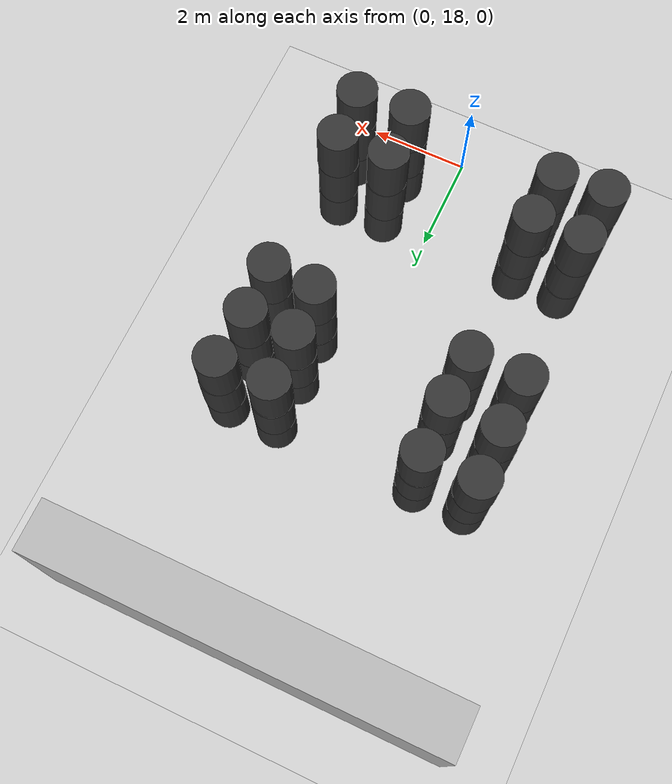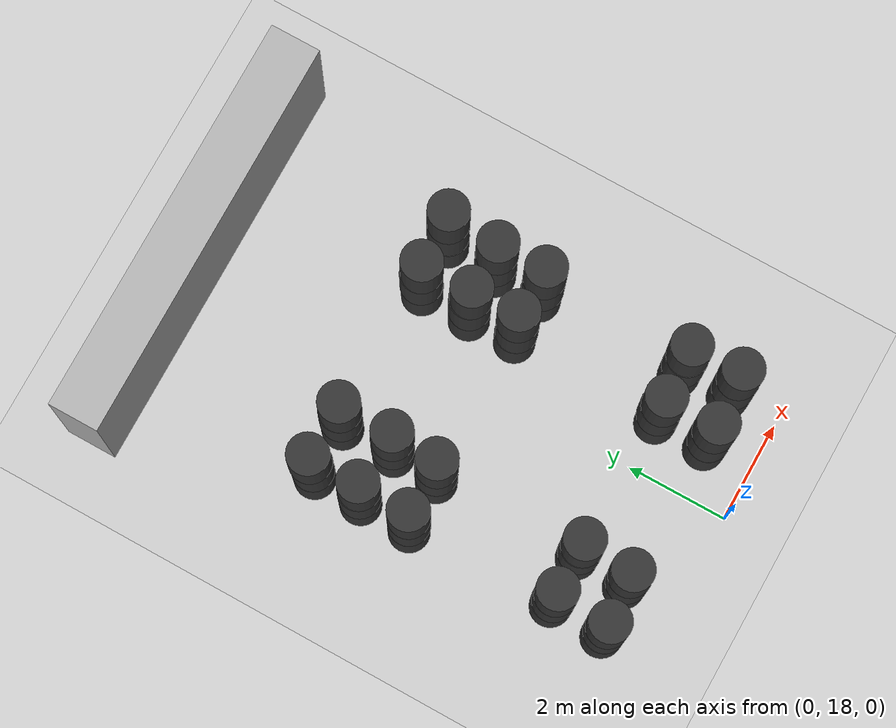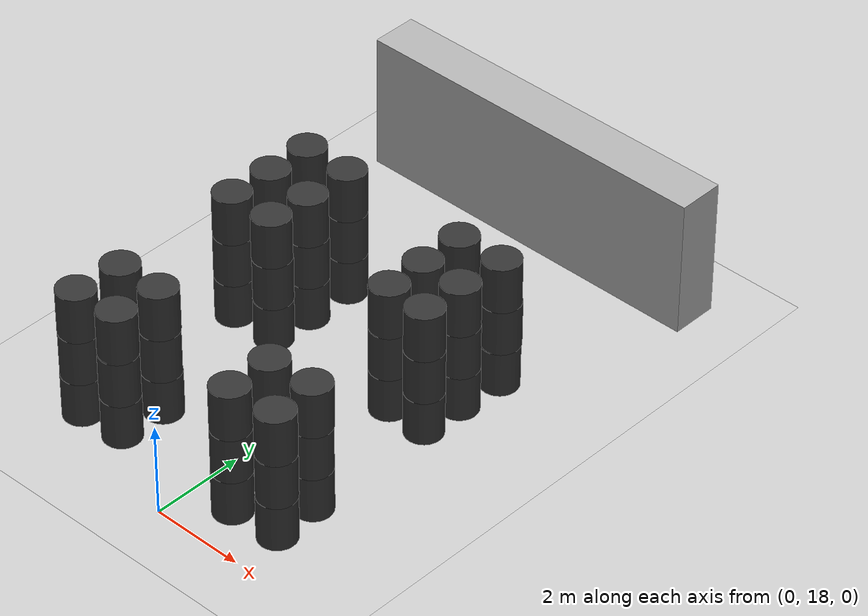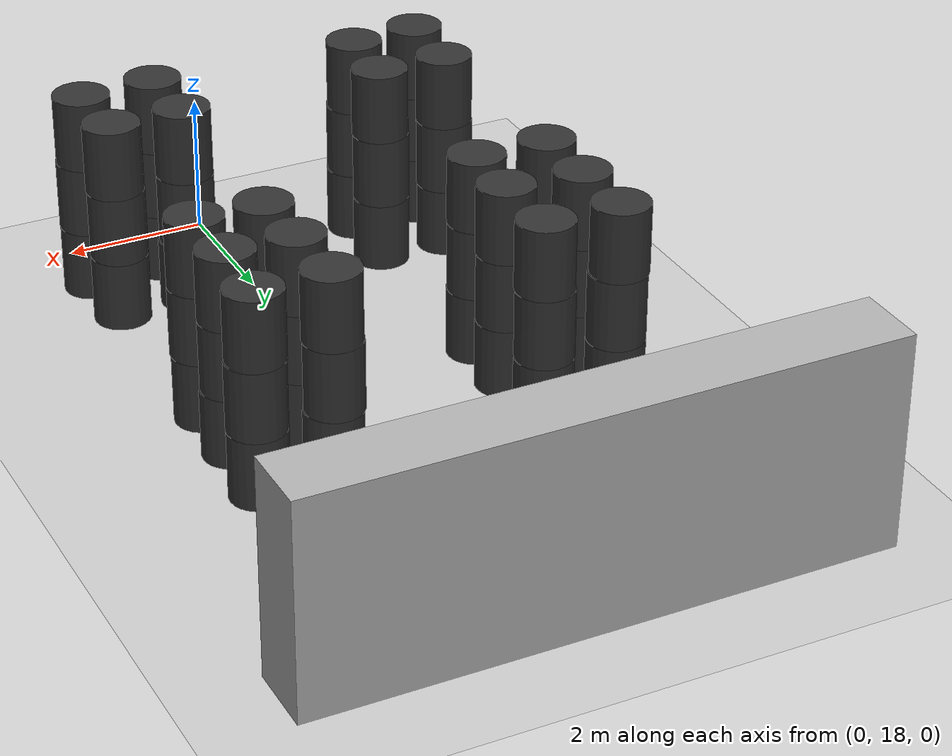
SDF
<sdf version="1.6">
 <world name="default">
  <include><uri>model://ground_plane</uri></include>
  <model name="wall_3">
   <pose frame="sim_world">-0.5 29.0 1.5 0 0 0</pose>
   <static>True</static>
   <link name="wall_3_link">
    <inertial>
     <mass>100</mass>
     <inertia>
      <ixx>0.166667</ixx>
      <ixy>0</ixy>
      <ixz>0</ixz>
      <iyy>0.166667</iyy>
      <iyz>0</iyz>
      <izz>0.166667</izz>
     </inertia>
    </inertial>
    <collision name="wall_3_collision">
     <geometry><box><size>8.0 1.0 3.0</size></box></geometry>
     <max_contacts>100</max_contacts>
    </collision>
    <visual name="wall_3_visual">
     <geometry><box><size>8.0 1.0 3.0</size></box></geometry>
     <material><ambient>0.7 0.7 0.7 1</ambient><diffuse>0.7 0.7 0.7 1</diffuse></material>
    </visual>
   </link>
  </model>
  <model name="cylinder_30">
   <pose frame="sim_world">-3.03980811727 18.9614411124 0.5 0 -0 0</pose>
   <static>True</static>
   <link name="cylinder_30_link">
    <inertial>
     <mass>100</mass>
     <inertia><ixx>0.145833</ixx><ixy>0</ixy><ixz>0</ixz><iyy>0.145833</iyy><iyz>0</iyz><izz>0.125</izz></inertia>
    </inertial>
    <collision name="cylinder_30_collision">
     <geometry><cylinder><length>1.0</length><radius>0.4</radius></cylinder></geometry>
     <max_contacts>100</max_contacts>
    </collision>
    <visual name="cylinder_30_visual">
     <geometry><cylinder><length>1.0</length><radius>0.4</radius></cylinder></geometry>
     <material><ambient>0.2 0.2 0.2 1</ambient><diffuse>0.2 0.2 0.2 1</diffuse></material>
    </visual>
   </link>
  </model>
  <model name="cylinder_31">
   <pose frame="sim_world">-3.03408151154 18.9624144078 1.5 0 -0 0</pose>
   <static>True</static>
   <link name="cylinder_31_link">
    <inertial>
     <mass>100</mass>
     <inertia><ixx>0.145833</ixx><ixy>0</ixy><ixz>0</ixz><iyy>0.145833</iyy><iyz>0</iyz><izz>0.125</izz></inertia>
    </inertial>
    <collision name="cylinder_31_collision">
     <geometry><cylinder><length>1.0</length><radius>0.4</radius></cylinder></geometry>
     <max_contacts>100</max_contacts>
    </collision>
    <visual name="cylinder_31_visual">
     <geometry><cylinder><length>1.0</length><radius>0.4</radius></cylinder></geometry>
     <material><ambient>0.2 0.2 0.2 1</ambient><diffuse>0.2 0.2 0.2 1</diffuse></material>
    </visual>
   </link>
  </model>
  <model name="cylinder_32">
   <pose frame="sim_world">-3.04690763 18.9666969515 2.5 0 -0 0</pose>
   <static>True</static>
   <link name="cylinder_32_link">
    <inertial>
     <mass>100</mass>
     <inertia><ixx>0.145833</ixx><ixy>0</ixy><ixz>0</ixz><iyy>0.145833</iyy><iyz>0</iyz><izz>0.125</izz></inertia>
    </inertial>
    <collision name="cylinder_32_collision">
     <geometry><cylinder><length>1.0</length><radius>0.4</radius></cylinder></geometry>
     <max_contacts>100</max_contacts>
    </collision>
    <visual name="cylinder_32_visual">
     <geometry><cylinder><length>1.0</length><radius>0.4</radius></cylinder></geometry>
     <material><ambient>0.2 0.2 0.2 1</ambient><diffuse>0.2 0.2 0.2 1</diffuse></material>
    </visual>
   </link>
  </model>
  <model name="cylinder_33">
   <pose frame="sim_world">-2.99564388703 20.0531173185 0.5 0 -0 0</pose>
   <static>True</static>
   <link name="cylinder_33_link">
    <inertial>
     <mass>100</mass>
     <inertia><ixx>0.145833</ixx><ixy>0</ixy><ixz>0</ixz><iyy>0.145833</iyy><iyz>0</iyz><izz>0.125</izz></inertia>
    </inertial>
    <collision name="cylinder_33_collision">
     <geometry><cylinder><length>1.0</length><radius>0.4</radius></cylinder></geometry>
     <max_contacts>100</max_contacts>
    </collision>
    <visual name="cylinder_33_visual">
     <geometry><cylinder><length>1.0</length><radius>0.4</radius></cylinder></geometry>
     <material><ambient>0.2 0.2 0.2 1</ambient><diffuse>0.2 0.2 0.2 1</diffuse></material>
    </visual>
   </link>
  </model>
  <model name="cylinder_34">
   <pose frame="sim_world">-2.99322209723 20.0410647307 1.5 0 -0 0</pose>
   <static>True</static>
   <link name="cylinder_34_link">
    <inertial>
     <mass>100</mass>
     <inertia><ixx>0.145833</ixx><ixy>0</ixy><ixz>0</ixz><iyy>0.145833</iyy><iyz>0</iyz><izz>0.125</izz></inertia>
    </inertial>
    <collision name="cylinder_34_collision">
     <geometry><cylinder><length>1.0</length><radius>0.4</radius></cylinder></geometry>
     <max_contacts>100</max_contacts>
    </collision>
    <visual name="cylinder_34_visual">
     <geometry><cylinder><length>1.0</length><radius>0.4</radius></cylinder></geometry>
     <material><ambient>0.2 0.2 0.2 1</ambient><diffuse>0.2 0.2 0.2 1</diffuse></material>
    </visual>
   </link>
  </model>
  <model name="cylinder_35">
   <pose frame="sim_world">-2.99016088027 20.0374575243 2.5 0 -0 0</pose>
   <static>True</static>
   <link name="cylinder_35_link">
    <inertial>
     <mass>100</mass>
     <inertia><ixx>0.145833</ixx><ixy>0</ixy><ixz>0</ixz><iyy>0.145833</iyy><iyz>0</iyz><izz>0.125</izz></inertia>
    </inertial>
    <collision name="cylinder_35_collision">
     <geometry><cylinder><length>1.0</length><radius>0.4</radius></cylinder></geometry>
     <max_contacts>100</max_contacts>
    </collision>
    <visual name="cylinder_35_visual">
     <geometry><cylinder><length>1.0</length><radius>0.4</radius></cylinder></geometry>
     <material><ambient>0.2 0.2 0.2 1</ambient><diffuse>0.2 0.2 0.2 1</diffuse></material>
    </visual>
   </link>
  </model>
  <model name="cylinder_36">
   <pose frame="sim_world">-3.05348859282 23.0096410358 0.5 0 -0 0</pose>
   <static>True</static>
   <link name="cylinder_36_link">
    <inertial>
     <mass>100</mass>
     <inertia><ixx>0.145833</ixx><ixy>0</ixy><ixz>0</ixz><iyy>0.145833</iyy><iyz>0</iyz><izz>0.125</izz></inertia>
    </inertial>
    <collision name="cylinder_36_collision">
     <geometry><cylinder><length>1.0</length><radius>0.4</radius></cylinder></geometry>
     <max_contacts>100</max_contacts>
    </collision>
    <visual name="cylinder_36_visual">
     <geometry><cylinder><length>1.0</length><radius>0.4</radius></cylinder></geometry>
     <material><ambient>0.2 0.2 0.2 1</ambient><diffuse>0.2 0.2 0.2 1</diffuse></material>
    </visual>
   </link>
  </model>
  <model name="cylinder_37">
   <pose frame="sim_world">-3.05013833795 23.0075990019 1.5 0 -0 0</pose>
   <static>True</static>
   <link name="cylinder_37_link">
    <inertial>
     <mass>100</mass>
     <inertia><ixx>0.145833</ixx><ixy>0</ixy><ixz>0</ixz><iyy>0.145833</iyy><iyz>0</iyz><izz>0.125</izz></inertia>
    </inertial>
    <collision name="cylinder_37_collision">
     <geometry><cylinder><length>1.0</length><radius>0.4</radius></cylinder></geometry>
     <max_contacts>100</max_contacts>
    </collision>
    <visual name="cylinder_37_visual">
     <geometry><cylinder><length>1.0</length><radius>0.4</radius></cylinder></geometry>
     <material><ambient>0.2 0.2 0.2 1</ambient><diffuse>0.2 0.2 0.2 1</diffuse></material>
    </visual>
   </link>
  </model>
  <model name="cylinder_38">
   <pose frame="sim_world">-3.04901959713 23.0092645543 2.5 0 -0 0</pose>
   <static>True</static>
   <link name="cylinder_38_link">
    <inertial>
     <mass>100</mass>
     <inertia><ixx>0.145833</ixx><ixy>0</ixy><ixz>0</ixz><iyy>0.145833</iyy><iyz>0</iyz><izz>0.125</izz></inertia>
    </inertial>
    <collision name="cylinder_38_collision">
     <geometry><cylinder><length>1.0</length><radius>0.4</radius></cylinder></geometry>
     <max_contacts>100</max_contacts>
    </collision>
    <visual name="cylinder_38_visual">
     <geometry><cylinder><length>1.0</length><radius>0.4</radius></cylinder></geometry>
     <material><ambient>0.2 0.2 0.2 1</ambient><diffuse>0.2 0.2 0.2 1</diffuse></material>
    </visual>
   </link>
  </model>
  <model name="cylinder_39">
   <pose frame="sim_world">-3.04549401953 24.0413131945 0.5 0 -0 0</pose>
   <static>True</static>
   <link name="cylinder_39_link">
    <inertial>
     <mass>100</mass>
     <inertia><ixx>0.145833</ixx><ixy>0</ixy><ixz>0</ixz><iyy>0.145833</iyy><iyz>0</iyz><izz>0.125</izz></inertia>
    </inertial>
    <collision name="cylinder_39_collision">
     <geometry><cylinder><length>1.0</length><radius>0.4</radius></cylinder></geometry>
     <max_contacts>100</max_contacts>
    </collision>
    <visual name="cylinder_39_visual">
     <geometry><cylinder><length>1.0</length><radius>0.4</radius></cylinder></geometry>
     <material><ambient>0.2 0.2 0.2 1</ambient><diffuse>0.2 0.2 0.2 1</diffuse></material>
    </visual>
   </link>
  </model>
  <model name="cylinder_40">
   <pose frame="sim_world">-3.04982680882 24.0381716794 1.5 0 -0 0</pose>
   <static>True</static>
   <link name="cylinder_40_link">
    <inertial>
     <mass>100</mass>
     <inertia><ixx>0.145833</ixx><ixy>0</ixy><ixz>0</ixz><iyy>0.145833</iyy><iyz>0</iyz><izz>0.125</izz></inertia>
    </inertial>
    <collision name="cylinder_40_collision">
     <geometry><cylinder><length>1.0</length><radius>0.4</radius></cylinder></geometry>
     <max_contacts>100</max_contacts>
    </collision>
    <visual name="cylinder_40_visual">
     <geometry><cylinder><length>1.0</length><radius>0.4</radius></cylinder></geometry>
     <material><ambient>0.2 0.2 0.2 1</ambient><diffuse>0.2 0.2 0.2 1</diffuse></material>
    </visual>
   </link>
  </model>
  <model name="cylinder_41">
   <pose frame="sim_world">-3.03841250034 24.0302606081 2.5 0 -0 0</pose>
   <static>True</static>
   <link name="cylinder_41_link">
    <inertial>
     <mass>100</mass>
     <inertia><ixx>0.145833</ixx><ixy>0</ixy><ixz>0</ixz><iyy>0.145833</iyy><iyz>0</iyz><izz>0.125</izz></inertia>
    </inertial>
    <collision name="cylinder_41_collision">
     <geometry><cylinder><length>1.0</length><radius>0.4</radius></cylinder></geometry>
     <max_contacts>100</max_contacts>
    </collision>
    <visual name="cylinder_41_visual">
     <geometry><cylinder><length>1.0</length><radius>0.4</radius></cylinder></geometry>
     <material><ambient>0.2 0.2 0.2 1</ambient><diffuse>0.2 0.2 0.2 1</diffuse></material>
    </visual>
   </link>
  </model>
  <model name="cylinder_42">
   <pose frame="sim_world">-3.03273412641 25.028604352 0.5 0 -0 0</pose>
   <static>True</static>
   <link name="cylinder_42_link">
    <inertial>
     <mass>100</mass>
     <inertia><ixx>0.145833</ixx><ixy>0</ixy><ixz>0</ixz><iyy>0.145833</iyy><iyz>0</iyz><izz>0.125</izz></inertia>
    </inertial>
    <collision name="cylinder_42_collision">
     <geometry><cylinder><length>1.0</length><radius>0.4</radius></cylinder></geometry>
     <max_contacts>100</max_contacts>
    </collision>
    <visual name="cylinder_42_visual">
     <geometry><cylinder><length>1.0</length><radius>0.4</radius></cylinder></geometry>
     <material><ambient>0.2 0.2 0.2 1</ambient><diffuse>0.2 0.2 0.2 1</diffuse></material>
    </visual>
   </link>
  </model>
  <model name="cylinder_43">
   <pose frame="sim_world">-3.02985355663 25.0349381711 1.5 0 -0 0</pose>
   <static>True</static>
   <link name="cylinder_43_link">
    <inertial>
     <mass>100</mass>
     <inertia><ixx>0.145833</ixx><ixy>0</ixy><ixz>0</ixz><iyy>0.145833</iyy><iyz>0</iyz><izz>0.125</izz></inertia>
    </inertial>
    <collision name="cylinder_43_collision">
     <geometry><cylinder><length>1.0</length><radius>0.4</radius></cylinder></geometry>
     <max_contacts>100</max_contacts>
    </collision>
    <visual name="cylinder_43_visual">
     <geometry><cylinder><length>1.0</length><radius>0.4</radius></cylinder></geometry>
     <material><ambient>0.2 0.2 0.2 1</ambient><diffuse>0.2 0.2 0.2 1</diffuse></material>
    </visual>
   </link>
  </model>
  <model name="cylinder_44">
   <pose frame="sim_world">-3.04586345049 25.042305277 2.5 0 -0 0</pose>
   <static>True</static>
   <link name="cylinder_44_link">
    <inertial>
     <mass>100</mass>
     <inertia><ixx>0.145833</ixx><ixy>0</ixy><ixz>0</ixz><iyy>0.145833</iyy><iyz>0</iyz><izz>0.125</izz></inertia>
    </inertial>
    <collision name="cylinder_44_collision">
     <geometry><cylinder><length>1.0</length><radius>0.4</radius></cylinder></geometry>
     <max_contacts>100</max_contacts>
    </collision>
    <visual name="cylinder_44_visual">
     <geometry><cylinder><length>1.0</length><radius>0.4</radius></cylinder></geometry>
     <material><ambient>0.2 0.2 0.2 1</ambient><diffuse>0.2 0.2 0.2 1</diffuse></material>
    </visual>
   </link>
  </model>
  <model name="cylinder_75">
   <pose frame="sim_world">-2.03730893811 19.0309272025 0.5 0 -0 0</pose>
   <static>True</static>
   <link name="cylinder_75_link">
    <inertial>
     <mass>100</mass>
     <inertia><ixx>0.145833</ixx><ixy>0</ixy><ixz>0</ixz><iyy>0.145833</iyy><iyz>0</iyz><izz>0.125</izz></inertia>
    </inertial>
    <collision name="cylinder_75_collision">
     <geometry><cylinder><length>1.0</length><radius>0.4</radius></cylinder></geometry>
     <max_contacts>100</max_contacts>
    </collision>
    <visual name="cylinder_75_visual">
     <geometry><cylinder><length>1.0</length><radius>0.4</radius></cylinder></geometry>
     <material><ambient>0.2 0.2 0.2 1</ambient><diffuse>0.2 0.2 0.2 1</diffuse></material>
    </visual>
   </link>
  </model>
  <model name="cylinder_76">
   <pose frame="sim_world">-2.04659830205 19.0321695592 1.5 0 -0 0</pose>
   <static>True</static>
   <link name="cylinder_76_link">
    <inertial>
     <mass>100</mass>
     <inertia><ixx>0.145833</ixx><ixy>0</ixy><ixz>0</ixz><iyy>0.145833</iyy><iyz>0</iyz><izz>0.125</izz></inertia>
    </inertial>
    <collision name="cylinder_76_collision">
     <geometry><cylinder><length>1.0</length><radius>0.4</radius></cylinder></geometry>
     <max_contacts>100</max_contacts>
    </collision>
    <visual name="cylinder_76_visual">
     <geometry><cylinder><length>1.0</length><radius>0.4</radius></cylinder></geometry>
     <material><ambient>0.2 0.2 0.2 1</ambient><diffuse>0.2 0.2 0.2 1</diffuse></material>
    </visual>
   </link>
  </model>
  <model name="cylinder_77">
   <pose frame="sim_world">-2.05712838636 19.0462002758 2.5 0 -0 0</pose>
   <static>True</static>
   <link name="cylinder_77_link">
    <inertial>
     <mass>100</mass>
     <inertia><ixx>0.145833</ixx><ixy>0</ixy><ixz>0</ixz><iyy>0.145833</iyy><iyz>0</iyz><izz>0.125</izz></inertia>
    </inertial>
    <collision name="cylinder_77_collision">
     <geometry><cylinder><length>1.0</length><radius>0.4</radius></cylinder></geometry>
     <max_contacts>100</max_contacts>
    </collision>
    <visual name="cylinder_77_visual">
     <geometry><cylinder><length>1.0</length><radius>0.4</radius></cylinder></geometry>
     <material><ambient>0.2 0.2 0.2 1</ambient><diffuse>0.2 0.2 0.2 1</diffuse></material>
    </visual>
   </link>
  </model>
  <model name="cylinder_78">
   <pose frame="sim_world">-1.98751339361 20.0540344784 0.5 0 -0 0</pose>
   <static>True</static>
   <link name="cylinder_78_link">
    <inertial>
     <mass>100</mass>
     <inertia><ixx>0.145833</ixx><ixy>0</ixy><ixz>0</ixz><iyy>0.145833</iyy><iyz>0</iyz><izz>0.125</izz></inertia>
    </inertial>
    <collision name="cylinder_78_collision">
     <geometry><cylinder><length>1.0</length><radius>0.4</radius></cylinder></geometry>
     <max_contacts>100</max_contacts>
    </collision>
    <visual name="cylinder_78_visual">
     <geometry><cylinder><length>1.0</length><radius>0.4</radius></cylinder></geometry>
     <material><ambient>0.2 0.2 0.2 1</ambient><diffuse>0.2 0.2 0.2 1</diffuse></material>
    </visual>
   </link>
  </model>
  <model name="cylinder_79">
   <pose frame="sim_world">-1.99566460094 20.0455189403 1.5 0 -0 0</pose>
   <static>True</static>
   <link name="cylinder_79_link">
    <inertial>
     <mass>100</mass>
     <inertia><ixx>0.145833</ixx><ixy>0</ixy><ixz>0</ixz><iyy>0.145833</iyy><iyz>0</iyz><izz>0.125</izz></inertia>
    </inertial>
    <collision name="cylinder_79_collision">
     <geometry><cylinder><length>1.0</length><radius>0.4</radius></cylinder></geometry>
     <max_contacts>100</max_contacts>
    </collision>
    <visual name="cylinder_79_visual">
     <geometry><cylinder><length>1.0</length><radius>0.4</radius></cylinder></geometry>
     <material><ambient>0.2 0.2 0.2 1</ambient><diffuse>0.2 0.2 0.2 1</diffuse></material>
    </visual>
   </link>
  </model>
  <model name="cylinder_80">
   <pose frame="sim_world">-1.98465823563 20.045427806 2.5 0 -0 0</pose>
   <static>True</static>
   <link name="cylinder_80_link">
    <inertial>
     <mass>100</mass>
     <inertia><ixx>0.145833</ixx><ixy>0</ixy><ixz>0</ixz><iyy>0.145833</iyy><iyz>0</iyz><izz>0.125</izz></inertia>
    </inertial>
    <collision name="cylinder_80_collision">
     <geometry><cylinder><length>1.0</length><radius>0.4</radius></cylinder></geometry>
     <max_contacts>100</max_contacts>
    </collision>
    <visual name="cylinder_80_visual">
     <geometry><cylinder><length>1.0</length><radius>0.4</radius></cylinder></geometry>
     <material><ambient>0.2 0.2 0.2 1</ambient><diffuse>0.2 0.2 0.2 1</diffuse></material>
    </visual>
   </link>
  </model>
  <model name="cylinder_81">
   <pose frame="sim_world">-2.00250123207 23.0145800915 0.5 0 -0 0</pose>
   <static>True</static>
   <link name="cylinder_81_link">
    <inertial>
     <mass>100</mass>
     <inertia><ixx>0.145833</ixx><ixy>0</ixy><ixz>0</ixz><iyy>0.145833</iyy><iyz>0</iyz><izz>0.125</izz></inertia>
    </inertial>
    <collision name="cylinder_81_collision">
     <geometry><cylinder><length>1.0</length><radius>0.4</radius></cylinder></geometry>
     <max_contacts>100</max_contacts>
    </collision>
    <visual name="cylinder_81_visual">
     <geometry><cylinder><length>1.0</length><radius>0.4</radius></cylinder></geometry>
     <material><ambient>0.2 0.2 0.2 1</ambient><diffuse>0.2 0.2 0.2 1</diffuse></material>
    </visual>
   </link>
  </model>
  <model name="cylinder_82">
   <pose frame="sim_world">-2.00463147181 23.0228580391 1.5 0 -0 0</pose>
   <static>True</static>
   <link name="cylinder_82_link">
    <inertial>
     <mass>100</mass>
     <inertia><ixx>0.145833</ixx><ixy>0</ixy><ixz>0</ixz><iyy>0.145833</iyy><iyz>0</iyz><izz>0.125</izz></inertia>
    </inertial>
    <collision name="cylinder_82_collision">
     <geometry><cylinder><length>1.0</length><radius>0.4</radius></cylinder></geometry>
     <max_contacts>100</max_contacts>
    </collision>
    <visual name="cylinder_82_visual">
     <geometry><cylinder><length>1.0</length><radius>0.4</radius></cylinder></geometry>
     <material><ambient>0.2 0.2 0.2 1</ambient><diffuse>0.2 0.2 0.2 1</diffuse></material>
    </visual>
   </link>
  </model>
  <model name="cylinder_83">
   <pose frame="sim_world">-2.00676875442 23.0095185006 2.5 0 -0 0</pose>
   <static>True</static>
   <link name="cylinder_83_link">
    <inertial>
     <mass>100</mass>
     <inertia><ixx>0.145833</ixx><ixy>0</ixy><ixz>0</ixz><iyy>0.145833</iyy><iyz>0</iyz><izz>0.125</izz></inertia>
    </inertial>
    <collision name="cylinder_83_collision">
     <geometry><cylinder><length>1.0</length><radius>0.4</radius></cylinder></geometry>
     <max_contacts>100</max_contacts>
    </collision>
    <visual name="cylinder_83_visual">
     <geometry><cylinder><length>1.0</length><radius>0.4</radius></cylinder></geometry>
     <material><ambient>0.2 0.2 0.2 1</ambient><diffuse>0.2 0.2 0.2 1</diffuse></material>
    </visual>
   </link>
  </model>
  <model name="cylinder_84">
   <pose frame="sim_world">-1.95967464457 23.9493410957 0.5 0 -0 0</pose>
   <static>True</static>
   <link name="cylinder_84_link">
    <inertial>
     <mass>100</mass>
     <inertia><ixx>0.145833</ixx><ixy>0</ixy><ixz>0</ixz><iyy>0.145833</iyy><iyz>0</iyz><izz>0.125</izz></inertia>
    </inertial>
    <collision name="cylinder_84_collision">
     <geometry><cylinder><length>1.0</length><radius>0.4</radius></cylinder></geometry>
     <max_contacts>100</max_contacts>
    </collision>
    <visual name="cylinder_84_visual">
     <geometry><cylinder><length>1.0</length><radius>0.4</radius></cylinder></geometry>
     <material><ambient>0.2 0.2 0.2 1</ambient><diffuse>0.2 0.2 0.2 1</diffuse></material>
    </visual>
   </link>
  </model>
  <model name="cylinder_85">
   <pose frame="sim_world">-1.96278501635 23.9575127593 1.5 0 -0 0</pose>
   <static>True</static>
   <link name="cylinder_85_link">
    <inertial>
     <mass>100</mass>
     <inertia><ixx>0.145833</ixx><ixy>0</ixy><ixz>0</ixz><iyy>0.145833</iyy><iyz>0</iyz><izz>0.125</izz></inertia>
    </inertial>
    <collision name="cylinder_85_collision">
     <geometry><cylinder><length>1.0</length><radius>0.4</radius></cylinder></geometry>
     <max_contacts>100</max_contacts>
    </collision>
    <visual name="cylinder_85_visual">
     <geometry><cylinder><length>1.0</length><radius>0.4</radius></cylinder></geometry>
     <material><ambient>0.2 0.2 0.2 1</ambient><diffuse>0.2 0.2 0.2 1</diffuse></material>
    </visual>
   </link>
  </model>
  <model name="cylinder_86">
   <pose frame="sim_world">-1.96021412066 23.9449165852 2.5 0 -0 0</pose>
   <static>True</static>
   <link name="cylinder_86_link">
    <inertial>
     <mass>100</mass>
     <inertia><ixx>0.145833</ixx><ixy>0</ixy><ixz>0</ixz><iyy>0.145833</iyy><iyz>0</iyz><izz>0.125</izz></inertia>
    </inertial>
    <collision name="cylinder_86_collision">
     <geometry><cylinder><length>1.0</length><radius>0.4</radius></cylinder></geometry>
     <max_contacts>100</max_contacts>
    </collision>
    <visual name="cylinder_86_visual">
     <geometry><cylinder><length>1.0</length><radius>0.4</radius></cylinder></geometry>
     <material><ambient>0.2 0.2 0.2 1</ambient><diffuse>0.2 0.2 0.2 1</diffuse></material>
    </visual>
   </link>
  </model>
  <model name="cylinder_87">
   <pose frame="sim_world">-1.97056957296 25.032899794 0.5 0 -0 0</pose>
   <static>True</static>
   <link name="cylinder_87_link">
    <inertial>
     <mass>100</mass>
     <inertia><ixx>0.145833</ixx><ixy>0</ixy><ixz>0</ixz><iyy>0.145833</iyy><iyz>0</iyz><izz>0.125</izz></inertia>
    </inertial>
    <collision name="cylinder_87_collision">
     <geometry><cylinder><length>1.0</length><radius>0.4</radius></cylinder></geometry>
     <max_contacts>100</max_contacts>
    </collision>
    <visual name="cylinder_87_visual">
     <geometry><cylinder><length>1.0</length><radius>0.4</radius></cylinder></geometry>
     <material><ambient>0.2 0.2 0.2 1</ambient><diffuse>0.2 0.2 0.2 1</diffuse></material>
    </visual>
   </link>
  </model>
  <model name="cylinder_88">
   <pose frame="sim_world">-1.97275095101 25.0373690375 1.5 0 -0 0</pose>
   <static>True</static>
   <link name="cylinder_88_link">
    <inertial>
     <mass>100</mass>
     <inertia><ixx>0.145833</ixx><ixy>0</ixy><ixz>0</ixz><iyy>0.145833</iyy><iyz>0</iyz><izz>0.125</izz></inertia>
    </inertial>
    <collision name="cylinder_88_collision">
     <geometry><cylinder><length>1.0</length><radius>0.4</radius></cylinder></geometry>
     <max_contacts>100</max_contacts>
    </collision>
    <visual name="cylinder_88_visual">
     <geometry><cylinder><length>1.0</length><radius>0.4</radius></cylinder></geometry>
     <material><ambient>0.2 0.2 0.2 1</ambient><diffuse>0.2 0.2 0.2 1</diffuse></material>
    </visual>
   </link>
  </model>
  <model name="cylinder_89">
   <pose frame="sim_world">-1.96409279283 25.0248204652 2.5 0 -0 0</pose>
   <static>True</static>
   <link name="cylinder_89_link">
    <inertial>
     <mass>100</mass>
     <inertia><ixx>0.145833</ixx><ixy>0</ixy><ixz>0</ixz><iyy>0.145833</iyy><iyz>0</iyz><izz>0.125</izz></inertia>
    </inertial>
    <collision name="cylinder_89_collision">
     <geometry><cylinder><length>1.0</length><radius>0.4</radius></cylinder></geometry>
     <max_contacts>100</max_contacts>
    </collision>
    <visual name="cylinder_89_visual">
     <geometry><cylinder><length>1.0</length><radius>0.4</radius></cylinder></geometry>
     <material><ambient>0.2 0.2 0.2 1</ambient><diffuse>0.2 0.2 0.2 1</diffuse></material>
    </visual>
   </link>
  </model>
  <model name="cylinder_120">
   <pose frame="sim_world">0.967918798331 18.9528650602 0.5 0 -0 0</pose>
   <static>True</static>
   <link name="cylinder_120_link">
    <inertial>
     <mass>100</mass>
     <inertia><ixx>0.145833</ixx><ixy>0</ixy><ixz>0</ixz><iyy>0.145833</iyy><iyz>0</iyz><izz>0.125</izz></inertia>
    </inertial>
    <collision name="cylinder_120_collision">
     <geometry><cylinder><length>1.0</length><radius>0.4</radius></cylinder></geometry>
     <max_contacts>100</max_contacts>
    </collision>
    <visual name="cylinder_120_visual">
     <geometry><cylinder><length>1.0</length><radius>0.4</radius></cylinder></geometry>
     <material><ambient>0.2 0.2 0.2 1</ambient><diffuse>0.2 0.2 0.2 1</diffuse></material>
    </visual>
   </link>
  </model>
  <model name="cylinder_121">
   <pose frame="sim_world">0.971932264484 18.9574443909 1.5 0 -0 0</pose>
   <static>True</static>
   <link name="cylinder_121_link">
    <inertial>
     <mass>100</mass>
     <inertia><ixx>0.145833</ixx><ixy>0</ixy><ixz>0</ixz><iyy>0.145833</iyy><iyz>0</iyz><izz>0.125</izz></inertia>
    </inertial>
    <collision name="cylinder_121_collision">
     <geometry><cylinder><length>1.0</length><radius>0.4</radius></cylinder></geometry>
     <max_contacts>100</max_contacts>
    </collision>
    <visual name="cylinder_121_visual">
     <geometry><cylinder><length>1.0</length><radius>0.4</radius></cylinder></geometry>
     <material><ambient>0.2 0.2 0.2 1</ambient><diffuse>0.2 0.2 0.2 1</diffuse></material>
    </visual>
   </link>
  </model>
  <model name="cylinder_122">
   <pose frame="sim_world">0.971240906726 18.9566036127 2.5 0 -0 0</pose>
   <static>True</static>
   <link name="cylinder_122_link">
    <inertial>
     <mass>100</mass>
     <inertia><ixx>0.145833</ixx><ixy>0</ixy><ixz>0</ixz><iyy>0.145833</iyy><iyz>0</iyz><izz>0.125</izz></inertia>
    </inertial>
    <collision name="cylinder_122_collision">
     <geometry><cylinder><length>1.0</length><radius>0.4</radius></cylinder></geometry>
     <max_contacts>100</max_contacts>
    </collision>
    <visual name="cylinder_122_visual">
     <geometry><cylinder><length>1.0</length><radius>0.4</radius></cylinder></geometry>
     <material><ambient>0.2 0.2 0.2 1</ambient><diffuse>0.2 0.2 0.2 1</diffuse></material>
    </visual>
   </link>
  </model>
  <model name="cylinder_123">
   <pose frame="sim_world">0.964876913284 19.9847835843 0.5 0 -0 0</pose>
   <static>True</static>
   <link name="cylinder_123_link">
    <inertial>
     <mass>100</mass>
     <inertia><ixx>0.145833</ixx><ixy>0</ixy><ixz>0</ixz><iyy>0.145833</iyy><iyz>0</iyz><izz>0.125</izz></inertia>
    </inertial>
    <collision name="cylinder_123_collision">
     <geometry><cylinder><length>1.0</length><radius>0.4</radius></cylinder></geometry>
     <max_contacts>100</max_contacts>
    </collision>
    <visual name="cylinder_123_visual">
     <geometry><cylinder><length>1.0</length><radius>0.4</radius></cylinder></geometry>
     <material><ambient>0.2 0.2 0.2 1</ambient><diffuse>0.2 0.2 0.2 1</diffuse></material>
    </visual>
   </link>
  </model>
  <model name="cylinder_124">
   <pose frame="sim_world">0.952376250132 20.0012894004 1.5 0 -0 0</pose>
   <static>True</static>
   <link name="cylinder_124_link">
    <inertial>
     <mass>100</mass>
     <inertia><ixx>0.145833</ixx><ixy>0</ixy><ixz>0</ixz><iyy>0.145833</iyy><iyz>0</iyz><izz>0.125</izz></inertia>
    </inertial>
    <collision name="cylinder_124_collision">
     <geometry><cylinder><length>1.0</length><radius>0.4</radius></cylinder></geometry>
     <max_contacts>100</max_contacts>
    </collision>
    <visual name="cylinder_124_visual">
     <geometry><cylinder><length>1.0</length><radius>0.4</radius></cylinder></geometry>
     <material><ambient>0.2 0.2 0.2 1</ambient><diffuse>0.2 0.2 0.2 1</diffuse></material>
    </visual>
   </link>
  </model>
  <model name="cylinder_125">
   <pose frame="sim_world">0.953409384163 19.9889078603 2.5 0 -0 0</pose>
   <static>True</static>
   <link name="cylinder_125_link">
    <inertial>
     <mass>100</mass>
     <inertia><ixx>0.145833</ixx><ixy>0</ixy><ixz>0</ixz><iyy>0.145833</iyy><iyz>0</iyz><izz>0.125</izz></inertia>
    </inertial>
    <collision name="cylinder_125_collision">
     <geometry><cylinder><length>1.0</length><radius>0.4</radius></cylinder></geometry>
     <max_contacts>100</max_contacts>
    </collision>
    <visual name="cylinder_125_visual">
     <geometry><cylinder><length>1.0</length><radius>0.4</radius></cylinder></geometry>
     <material><ambient>0.2 0.2 0.2 1</ambient><diffuse>0.2 0.2 0.2 1</diffuse></material>
    </visual>
   </link>
  </model>
  <model name="cylinder_126">
   <pose frame="sim_world">1.03753550574 23.0257858567 0.5 0 -0 0</pose>
   <static>True</static>
   <link name="cylinder_126_link">
    <inertial>
     <mass>100</mass>
     <inertia><ixx>0.145833</ixx><ixy>0</ixy><ixz>0</ixz><iyy>0.145833</iyy><iyz>0</iyz><izz>0.125</izz></inertia>
    </inertial>
    <collision name="cylinder_126_collision">
     <geometry><cylinder><length>1.0</length><radius>0.4</radius></cylinder></geometry>
     <max_contacts>100</max_contacts>
    </collision>
    <visual name="cylinder_126_visual">
     <geometry><cylinder><length>1.0</length><radius>0.4</radius></cylinder></geometry>
     <material><ambient>0.2 0.2 0.2 1</ambient><diffuse>0.2 0.2 0.2 1</diffuse></material>
    </visual>
   </link>
  </model>
  <model name="cylinder_127">
   <pose frame="sim_world">1.04466648664 23.0144106775 1.5 0 -0 0</pose>
   <static>True</static>
   <link name="cylinder_127_link">
    <inertial>
     <mass>100</mass>
     <inertia><ixx>0.145833</ixx><ixy>0</ixy><ixz>0</ixz><iyy>0.145833</iyy><iyz>0</iyz><izz>0.125</izz></inertia>
    </inertial>
    <collision name="cylinder_127_collision">
     <geometry><cylinder><length>1.0</length><radius>0.4</radius></cylinder></geometry>
     <max_contacts>100</max_contacts>
    </collision>
    <visual name="cylinder_127_visual">
     <geometry><cylinder><length>1.0</length><radius>0.4</radius></cylinder></geometry>
     <material><ambient>0.2 0.2 0.2 1</ambient><diffuse>0.2 0.2 0.2 1</diffuse></material>
    </visual>
   </link>
  </model>
  <model name="cylinder_128">
   <pose frame="sim_world">1.03936682924 23.0226148301 2.5 0 -0 0</pose>
   <static>True</static>
   <link name="cylinder_128_link">
    <inertial>
     <mass>100</mass>
     <inertia><ixx>0.145833</ixx><ixy>0</ixy><ixz>0</ixz><iyy>0.145833</iyy><iyz>0</iyz><izz>0.125</izz></inertia>
    </inertial>
    <collision name="cylinder_128_collision">
     <geometry><cylinder><length>1.0</length><radius>0.4</radius></cylinder></geometry>
     <max_contacts>100</max_contacts>
    </collision>
    <visual name="cylinder_128_visual">
     <geometry><cylinder><length>1.0</length><radius>0.4</radius></cylinder></geometry>
     <material><ambient>0.2 0.2 0.2 1</ambient><diffuse>0.2 0.2 0.2 1</diffuse></material>
    </visual>
   </link>
  </model>
  <model name="cylinder_129">
   <pose frame="sim_world">0.99687533633 23.9791355983 0.5 0 -0 0</pose>
   <static>True</static>
   <link name="cylinder_129_link">
    <inertial>
     <mass>100</mass>
     <inertia><ixx>0.145833</ixx><ixy>0</ixy><ixz>0</ixz><iyy>0.145833</iyy><iyz>0</iyz><izz>0.125</izz></inertia>
    </inertial>
    <collision name="cylinder_129_collision">
     <geometry><cylinder><length>1.0</length><radius>0.4</radius></cylinder></geometry>
     <max_contacts>100</max_contacts>
    </collision>
    <visual name="cylinder_129_visual">
     <geometry><cylinder><length>1.0</length><radius>0.4</radius></cylinder></geometry>
     <material><ambient>0.2 0.2 0.2 1</ambient><diffuse>0.2 0.2 0.2 1</diffuse></material>
    </visual>
   </link>
  </model>
  <model name="cylinder_130">
   <pose frame="sim_world">0.994214728046 23.9818286646 1.5 0 -0 0</pose>
   <static>True</static>
   <link name="cylinder_130_link">
    <inertial>
     <mass>100</mass>
     <inertia><ixx>0.145833</ixx><ixy>0</ixy><ixz>0</ixz><iyy>0.145833</iyy><iyz>0</iyz><izz>0.125</izz></inertia>
    </inertial>
    <collision name="cylinder_130_collision">
     <geometry><cylinder><length>1.0</length><radius>0.4</radius></cylinder></geometry>
     <max_contacts>100</max_contacts>
    </collision>
    <visual name="cylinder_130_visual">
     <geometry><cylinder><length>1.0</length><radius>0.4</radius></cylinder></geometry>
     <material><ambient>0.2 0.2 0.2 1</ambient><diffuse>0.2 0.2 0.2 1</diffuse></material>
    </visual>
   </link>
  </model>
  <model name="cylinder_131">
   <pose frame="sim_world">1.00767810017 23.9695016228 2.5 0 -0 0</pose>
   <static>True</static>
   <link name="cylinder_131_link">
    <inertial>
     <mass>100</mass>
     <inertia><ixx>0.145833</ixx><ixy>0</ixy><ixz>0</ixz><iyy>0.145833</iyy><iyz>0</iyz><izz>0.125</izz></inertia>
    </inertial>
    <collision name="cylinder_131_collision">
     <geometry><cylinder><length>1.0</length><radius>0.4</radius></cylinder></geometry>
     <max_contacts>100</max_contacts>
    </collision>
    <visual name="cylinder_131_visual">
     <geometry><cylinder><length>1.0</length><radius>0.4</radius></cylinder></geometry>
     <material><ambient>0.2 0.2 0.2 1</ambient><diffuse>0.2 0.2 0.2 1</diffuse></material>
    </visual>
   </link>
  </model>
  <model name="cylinder_132">
   <pose frame="sim_world">0.99426721578 24.9846050351 0.5 0 -0 0</pose>
   <static>True</static>
   <link name="cylinder_132_link">
    <inertial>
     <mass>100</mass>
     <inertia><ixx>0.145833</ixx><ixy>0</ixy><ixz>0</ixz><iyy>0.145833</iyy><iyz>0</iyz><izz>0.125</izz></inertia>
    </inertial>
    <collision name="cylinder_132_collision">
     <geometry><cylinder><length>1.0</length><radius>0.4</radius></cylinder></geometry>
     <max_contacts>100</max_contacts>
    </collision>
    <visual name="cylinder_132_visual">
     <geometry><cylinder><length>1.0</length><radius>0.4</radius></cylinder></geometry>
     <material><ambient>0.2 0.2 0.2 1</ambient><diffuse>0.2 0.2 0.2 1</diffuse></material>
    </visual>
   </link>
  </model>
  <model name="cylinder_133">
   <pose frame="sim_world">0.981041609958 25.0017454738 1.5 0 -0 0</pose>
   <static>True</static>
   <link name="cylinder_133_link">
    <inertial>
     <mass>100</mass>
     <inertia><ixx>0.145833</ixx><ixy>0</ixy><ixz>0</ixz><iyy>0.145833</iyy><iyz>0</iyz><izz>0.125</izz></inertia>
    </inertial>
    <collision name="cylinder_133_collision">
     <geometry><cylinder><length>1.0</length><radius>0.4</radius></cylinder></geometry>
     <max_contacts>100</max_contacts>
    </collision>
    <visual name="cylinder_133_visual">
     <geometry><cylinder><length>1.0</length><radius>0.4</radius></cylinder></geometry>
     <material><ambient>0.2 0.2 0.2 1</ambient><diffuse>0.2 0.2 0.2 1</diffuse></material>
    </visual>
   </link>
  </model>
  <model name="cylinder_134">
   <pose frame="sim_world">0.987209217085 24.9850103576 2.5 0 -0 0</pose>
   <static>True</static>
   <link name="cylinder_134_link">
    <inertial>
     <mass>100</mass>
     <inertia><ixx>0.145833</ixx><ixy>0</ixy><ixz>0</ixz><iyy>0.145833</iyy><iyz>0</iyz><izz>0.125</izz></inertia>
    </inertial>
    <collision name="cylinder_134_collision">
     <geometry><cylinder><length>1.0</length><radius>0.4</radius></cylinder></geometry>
     <max_contacts>100</max_contacts>
    </collision>
    <visual name="cylinder_134_visual">
     <geometry><cylinder><length>1.0</length><radius>0.4</radius></cylinder></geometry>
     <material><ambient>0.2 0.2 0.2 1</ambient><diffuse>0.2 0.2 0.2 1</diffuse></material>
    </visual>
   </link>
  </model>
  <model name="cylinder_165">
   <pose frame="sim_world">2.04717314227 19.0198589746 0.5 0 -0 0</pose>
   <static>True</static>
   <link name="cylinder_165_link">
    <inertial>
     <mass>100</mass>
     <inertia><ixx>0.145833</ixx><ixy>0</ixy><ixz>0</ixz><iyy>0.145833</iyy><iyz>0</iyz><izz>0.125</izz></inertia>
    </inertial>
    <collision name="cylinder_165_collision">
     <geometry><cylinder><length>1.0</length><radius>0.4</radius></cylinder></geometry>
     <max_contacts>100</max_contacts>
    </collision>
    <visual name="cylinder_165_visual">
     <geometry><cylinder><length>1.0</length><radius>0.4</radius></cylinder></geometry>
     <material><ambient>0.2 0.2 0.2 1</ambient><diffuse>0.2 0.2 0.2 1</diffuse></material>
    </visual>
   </link>
  </model>
  <model name="cylinder_166">
   <pose frame="sim_world">2.05329016797 19.0212795196 1.5 0 -0 0</pose>
   <static>True</static>
   <link name="cylinder_166_link">
    <inertial>
     <mass>100</mass>
     <inertia><ixx>0.145833</ixx><ixy>0</ixy><ixz>0</ixz><iyy>0.145833</iyy><iyz>0</iyz><izz>0.125</izz></inertia>
    </inertial>
    <collision name="cylinder_166_collision">
     <geometry><cylinder><length>1.0</length><radius>0.4</radius></cylinder></geometry>
     <max_contacts>100</max_contacts>
    </collision>
    <visual name="cylinder_166_visual">
     <geometry><cylinder><length>1.0</length><radius>0.4</radius></cylinder></geometry>
     <material><ambient>0.2 0.2 0.2 1</ambient><diffuse>0.2 0.2 0.2 1</diffuse></material>
    </visual>
   </link>
  </model>
  <model name="cylinder_167">
   <pose frame="sim_world">2.04477487745 19.0292876407 2.5 0 -0 0</pose>
   <static>True</static>
   <link name="cylinder_167_link">
    <inertial>
     <mass>100</mass>
     <inertia><ixx>0.145833</ixx><ixy>0</ixy><ixz>0</ixz><iyy>0.145833</iyy><iyz>0</iyz><izz>0.125</izz></inertia>
    </inertial>
    <collision name="cylinder_167_collision">
     <geometry><cylinder><length>1.0</length><radius>0.4</radius></cylinder></geometry>
     <max_contacts>100</max_contacts>
    </collision>
    <visual name="cylinder_167_visual">
     <geometry><cylinder><length>1.0</length><radius>0.4</radius></cylinder></geometry>
     <material><ambient>0.2 0.2 0.2 1</ambient><diffuse>0.2 0.2 0.2 1</diffuse></material>
    </visual>
   </link>
  </model>
  <model name="cylinder_168">
   <pose frame="sim_world">1.97261090116 20.0256927162 0.5 0 -0 0</pose>
   <static>True</static>
   <link name="cylinder_168_link">
    <inertial>
     <mass>100</mass>
     <inertia><ixx>0.145833</ixx><ixy>0</ixy><ixz>0</ixz><iyy>0.145833</iyy><iyz>0</iyz><izz>0.125</izz></inertia>
    </inertial>
    <collision name="cylinder_168_collision">
     <geometry><cylinder><length>1.0</length><radius>0.4</radius></cylinder></geometry>
     <max_contacts>100</max_contacts>
    </collision>
    <visual name="cylinder_168_visual">
     <geometry><cylinder><length>1.0</length><radius>0.4</radius></cylinder></geometry>
     <material><ambient>0.2 0.2 0.2 1</ambient><diffuse>0.2 0.2 0.2 1</diffuse></material>
    </visual>
   </link>
  </model>
  <model name="cylinder_169">
   <pose frame="sim_world">1.97188468031 20.021602045 1.5 0 -0 0</pose>
   <static>True</static>
   <link name="cylinder_169_link">
    <inertial>
     <mass>100</mass>
     <inertia><ixx>0.145833</ixx><ixy>0</ixy><ixz>0</ixz><iyy>0.145833</iyy><iyz>0</iyz><izz>0.125</izz></inertia>
    </inertial>
    <collision name="cylinder_169_collision">
     <geometry><cylinder><length>1.0</length><radius>0.4</radius></cylinder></geometry>
     <max_contacts>100</max_contacts>
    </collision>
    <visual name="cylinder_169_visual">
     <geometry><cylinder><length>1.0</length><radius>0.4</radius></cylinder></geometry>
     <material><ambient>0.2 0.2 0.2 1</ambient><diffuse>0.2 0.2 0.2 1</diffuse></material>
    </visual>
   </link>
  </model>
  <model name="cylinder_170">
   <pose frame="sim_world">1.98540222881 20.0305679669 2.5 0 -0 0</pose>
   <static>True</static>
   <link name="cylinder_170_link">
    <inertial>
     <mass>100</mass>
     <inertia><ixx>0.145833</ixx><ixy>0</ixy><ixz>0</ixz><iyy>0.145833</iyy><iyz>0</iyz><izz>0.125</izz></inertia>
    </inertial>
    <collision name="cylinder_170_collision">
     <geometry><cylinder><length>1.0</length><radius>0.4</radius></cylinder></geometry>
     <max_contacts>100</max_contacts>
    </collision>
    <visual name="cylinder_170_visual">
     <geometry><cylinder><length>1.0</length><radius>0.4</radius></cylinder></geometry>
     <material><ambient>0.2 0.2 0.2 1</ambient><diffuse>0.2 0.2 0.2 1</diffuse></material>
    </visual>
   </link>
  </model>
  <model name="cylinder_171">
   <pose frame="sim_world">1.96493743746 22.9888957979 0.5 0 -0 0</pose>
   <static>True</static>
   <link name="cylinder_171_link">
    <inertial>
     <mass>100</mass>
     <inertia><ixx>0.145833</ixx><ixy>0</ixy><ixz>0</ixz><iyy>0.145833</iyy><iyz>0</iyz><izz>0.125</izz></inertia>
    </inertial>
    <collision name="cylinder_171_collision">
     <geometry><cylinder><length>1.0</length><radius>0.4</radius></cylinder></geometry>
     <max_contacts>100</max_contacts>
    </collision>
    <visual name="cylinder_171_visual">
     <geometry><cylinder><length>1.0</length><radius>0.4</radius></cylinder></geometry>
     <material><ambient>0.2 0.2 0.2 1</ambient><diffuse>0.2 0.2 0.2 1</diffuse></material>
    </visual>
   </link>
  </model>
  <model name="cylinder_172">
   <pose frame="sim_world">1.97783468401 22.9783600544 1.5 0 -0 0</pose>
   <static>True</static>
   <link name="cylinder_172_link">
    <inertial>
     <mass>100</mass>
     <inertia><ixx>0.145833</ixx><ixy>0</ixy><ixz>0</ixz><iyy>0.145833</iyy><iyz>0</iyz><izz>0.125</izz></inertia>
    </inertial>
    <collision name="cylinder_172_collision">
     <geometry><cylinder><length>1.0</length><radius>0.4</radius></cylinder></geometry>
     <max_contacts>100</max_contacts>
    </collision>
    <visual name="cylinder_172_visual">
     <geometry><cylinder><length>1.0</length><radius>0.4</radius></cylinder></geometry>
     <material><ambient>0.2 0.2 0.2 1</ambient><diffuse>0.2 0.2 0.2 1</diffuse></material>
    </visual>
   </link>
  </model>
  <model name="cylinder_173">
   <pose frame="sim_world">1.97713846697 22.9784148133 2.5 0 -0 0</pose>
   <static>True</static>
   <link name="cylinder_173_link">
    <inertial>
     <mass>100</mass>
     <inertia><ixx>0.145833</ixx><ixy>0</ixy><ixz>0</ixz><iyy>0.145833</iyy><iyz>0</iyz><izz>0.125</izz></inertia>
    </inertial>
    <collision name="cylinder_173_collision">
     <geometry><cylinder><length>1.0</length><radius>0.4</radius></cylinder></geometry>
     <max_contacts>100</max_contacts>
    </collision>
    <visual name="cylinder_173_visual">
     <geometry><cylinder><length>1.0</length><radius>0.4</radius></cylinder></geometry>
     <material><ambient>0.2 0.2 0.2 1</ambient><diffuse>0.2 0.2 0.2 1</diffuse></material>
    </visual>
   </link>
  </model>
  <model name="cylinder_174">
   <pose frame="sim_world">1.97350529623 23.9553193765 0.5 0 -0 0</pose>
   <static>True</static>
   <link name="cylinder_174_link">
    <inertial>
     <mass>100</mass>
     <inertia><ixx>0.145833</ixx><ixy>0</ixy><ixz>0</ixz><iyy>0.145833</iyy><iyz>0</iyz><izz>0.125</izz></inertia>
    </inertial>
    <collision name="cylinder_174_collision">
     <geometry><cylinder><length>1.0</length><radius>0.4</radius></cylinder></geometry>
     <max_contacts>100</max_contacts>
    </collision>
    <visual name="cylinder_174_visual">
     <geometry><cylinder><length>1.0</length><radius>0.4</radius></cylinder></geometry>
     <material><ambient>0.2 0.2 0.2 1</ambient><diffuse>0.2 0.2 0.2 1</diffuse></material>
    </visual>
   </link>
  </model>
  <model name="cylinder_175">
   <pose frame="sim_world">1.9600749218 23.9617100785 1.5 0 -0 0</pose>
   <static>True</static>
   <link name="cylinder_175_link">
    <inertial>
     <mass>100</mass>
     <inertia><ixx>0.145833</ixx><ixy>0</ixy><ixz>0</ixz><iyy>0.145833</iyy><iyz>0</iyz><izz>0.125</izz></inertia>
    </inertial>
    <collision name="cylinder_175_collision">
     <geometry><cylinder><length>1.0</length><radius>0.4</radius></cylinder></geometry>
     <max_contacts>100</max_contacts>
    </collision>
    <visual name="cylinder_175_visual">
     <geometry><cylinder><length>1.0</length><radius>0.4</radius></cylinder></geometry>
     <material><ambient>0.2 0.2 0.2 1</ambient><diffuse>0.2 0.2 0.2 1</diffuse></material>
    </visual>
   </link>
  </model>
  <model name="cylinder_176">
   <pose frame="sim_world">1.96001470659 23.9552370134 2.5 0 -0 0</pose>
   <static>True</static>
   <link name="cylinder_176_link">
    <inertial>
     <mass>100</mass>
     <inertia><ixx>0.145833</ixx><ixy>0</ixy><ixz>0</ixz><iyy>0.145833</iyy><iyz>0</iyz><izz>0.125</izz></inertia>
    </inertial>
    <collision name="cylinder_176_collision">
     <geometry><cylinder><length>1.0</length><radius>0.4</radius></cylinder></geometry>
     <max_contacts>100</max_contacts>
    </collision>
    <visual name="cylinder_176_visual">
     <geometry><cylinder><length>1.0</length><radius>0.4</radius></cylinder></geometry>
     <material><ambient>0.2 0.2 0.2 1</ambient><diffuse>0.2 0.2 0.2 1</diffuse></material>
    </visual>
   </link>
  </model>
  <model name="cylinder_177">
   <pose frame="sim_world">2.03927532248 25.0053637054 0.5 0 -0 0</pose>
   <static>True</static>
   <link name="cylinder_177_link">
    <inertial>
     <mass>100</mass>
     <inertia><ixx>0.145833</ixx><ixy>0</ixy><ixz>0</ixz><iyy>0.145833</iyy><iyz>0</iyz><izz>0.125</izz></inertia>
    </inertial>
    <collision name="cylinder_177_collision">
     <geometry><cylinder><length>1.0</length><radius>0.4</radius></cylinder></geometry>
     <max_contacts>100</max_contacts>
    </collision>
    <visual name="cylinder_177_visual">
     <geometry><cylinder><length>1.0</length><radius>0.4</radius></cylinder></geometry>
     <material><ambient>0.2 0.2 0.2 1</ambient><diffuse>0.2 0.2 0.2 1</diffuse></material>
    </visual>
   </link>
  </model>
  <model name="cylinder_178">
   <pose frame="sim_world">2.0485992691 25.0182582357 1.5 0 -0 0</pose>
   <static>True</static>
   <link name="cylinder_178_link">
    <inertial>
     <mass>100</mass>
     <inertia><ixx>0.145833</ixx><ixy>0</ixy><ixz>0</ixz><iyy>0.145833</iyy><iyz>0</iyz><izz>0.125</izz></inertia>
    </inertial>
    <collision name="cylinder_178_collision">
     <geometry><cylinder><length>1.0</length><radius>0.4</radius></cylinder></geometry>
     <max_contacts>100</max_contacts>
    </collision>
    <visual name="cylinder_178_visual">
     <geometry><cylinder><length>1.0</length><radius>0.4</radius></cylinder></geometry>
     <material><ambient>0.2 0.2 0.2 1</ambient><diffuse>0.2 0.2 0.2 1</diffuse></material>
    </visual>
   </link>
  </model>
  <model name="cylinder_179">
   <pose frame="sim_world">2.0336250992 25.0099353457 2.5 0 -0 0</pose>
   <static>True</static>
   <link name="cylinder_179_link">
    <inertial>
     <mass>100</mass>
     <inertia><ixx>0.145833</ixx><ixy>0</ixy><ixz>0</ixz><iyy>0.145833</iyy><iyz>0</iyz><izz>0.125</izz></inertia>
    </inertial>
    <collision name="cylinder_179_collision">
     <geometry><cylinder><length>1.0</length><radius>0.4</radius></cylinder></geometry>
     <max_contacts>100</max_contacts>
    </collision>
    <visual name="cylinder_179_visual">
     <geometry><cylinder><length>1.0</length><radius>0.4</radius></cylinder></geometry>
     <material><ambient>0.2 0.2 0.2 1</ambient><diffuse>0.2 0.2 0.2 1</diffuse></material>
    </visual>
   </link>
  </model>
  <model name="ground_plane"><link name="ground_plane"/></model>
 </world>
</sdf>
